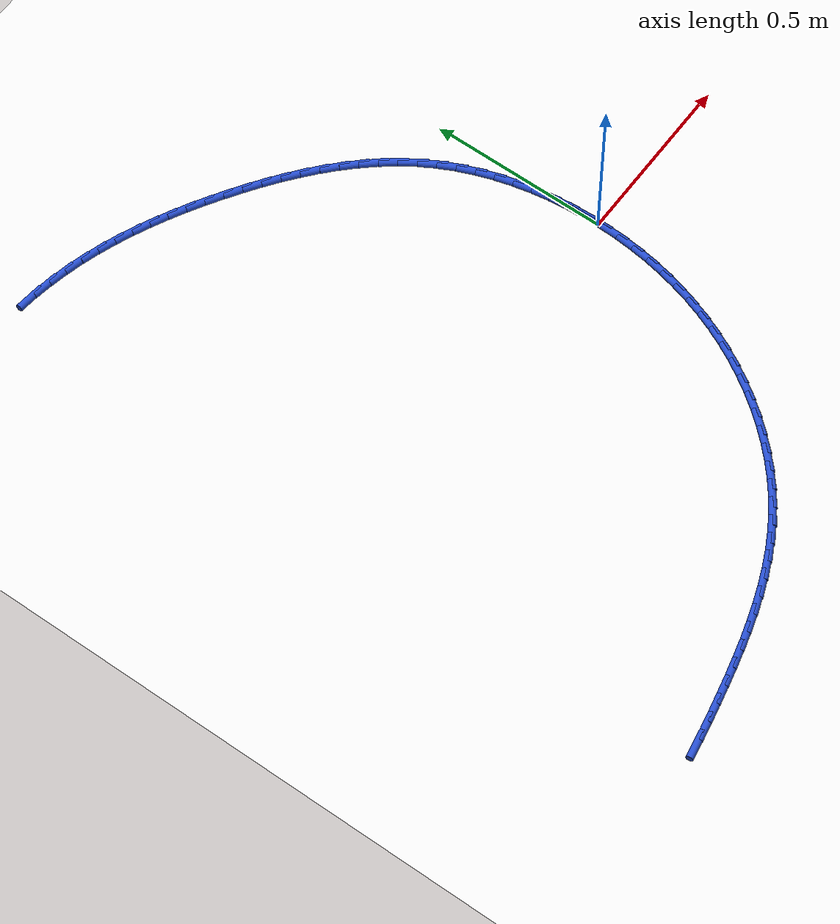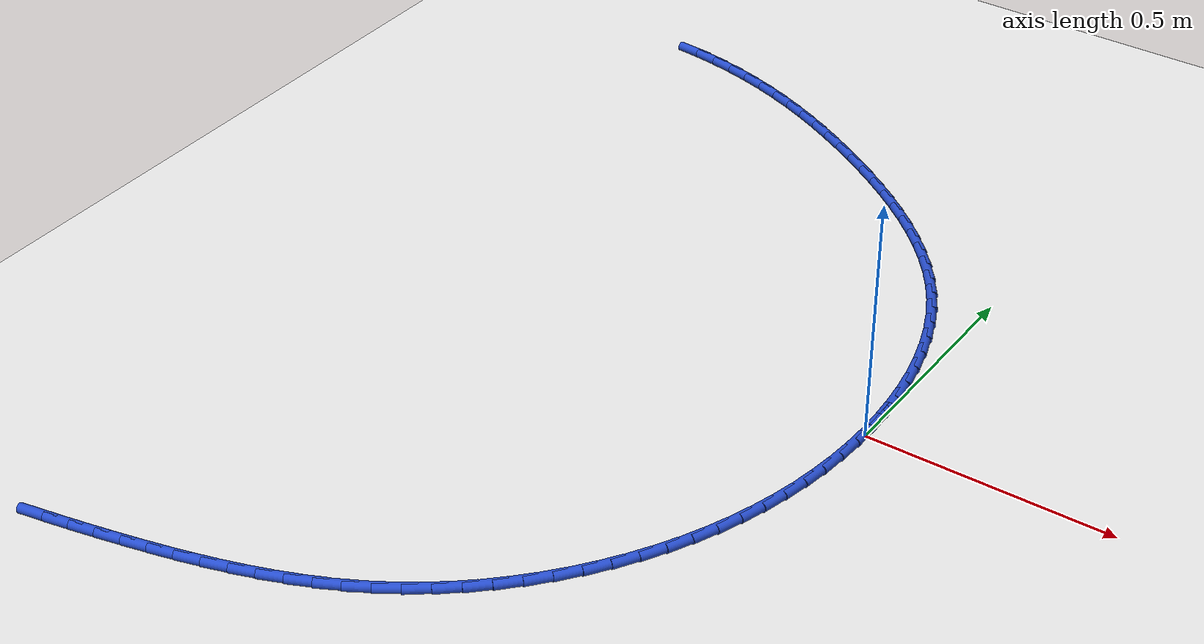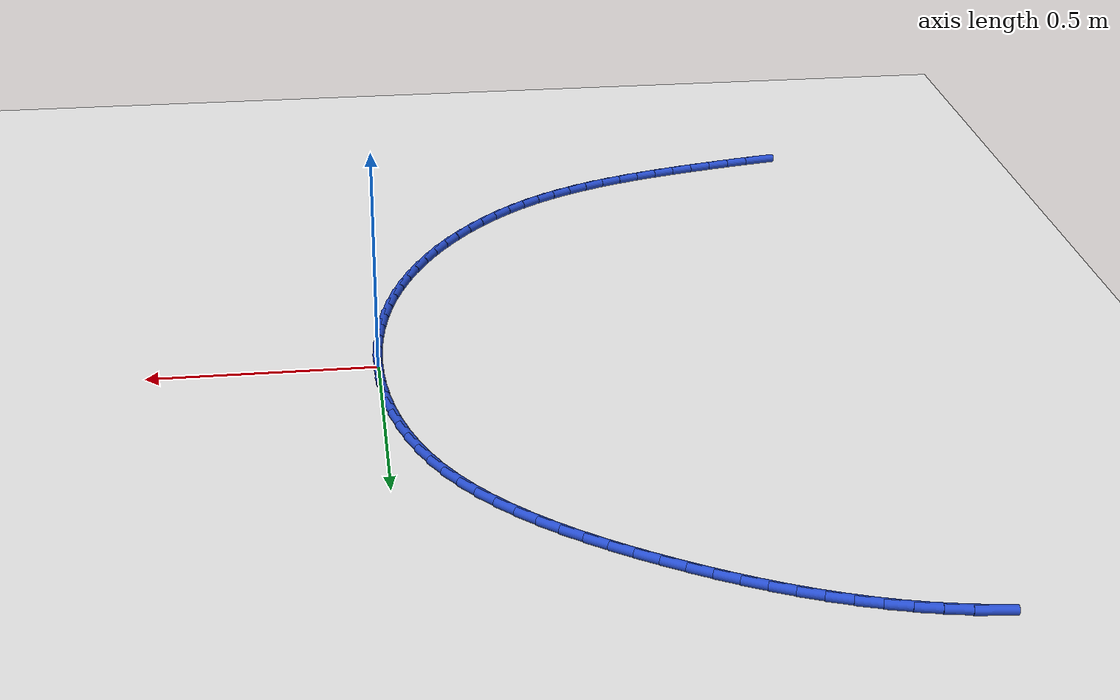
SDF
<sdf version="1.6">
 <world name="default">
  <model name="ground_plane">
   <static>1</static>
   <link name="link">
    <collision name="collision">
     <geometry><plane><normal>0 0 1</normal><size>100 100</size></plane></geometry>
     <surface><friction><ode><mu>100</mu><mu2>50</mu2></ode></friction></surface>
    </collision>
    <visual name="visual">
     <cast_shadows>0</cast_shadows>
     <geometry><plane><normal>0 0 1</normal><size>100 100</size></plane></geometry>
     <material>
      <script><uri>file://media/materials/scripts/gazebo.material</uri><name>Gazebo/WhiteGlow</name></script>
     </material>
    </visual>
   </link>
  </model>
  <model name="line">
   <link name="link_0">
    <pose>3.469446951953614e-18 9.71445146547012e-17 0.01 0 1.57 -1.5566317324128534</pose>
    <collision name="collision">
     <geometry><cylinder><radius>0.01</radius><length>0.08</length></cylinder></geometry>
    </collision>
    <visual name="visual">
     <material>
      <script><name>Gazebo/Blue</name><uri>file://media/materials/scripts/gazebo.material</uri></script>
     </material>
     <geometry><cylinder><radius>0.01</radius><length>0.08</length></cylinder></geometry>
    </visual>
   </link>
   <link name="link_1">
    <pose>-0.0007343135327152452 0.05183801261152439 0.01 0 1.57 -1.5074967584380725</pose>
    <collision name="collision">
     <geometry><cylinder><radius>0.01</radius><length>0.08</length></cylinder></geometry>
    </collision>
    <visual name="visual">
     <material>
      <script><name>Gazebo/Blue</name><uri>file://media/materials/scripts/gazebo.material</uri></script>
     </material>
     <geometry><cylinder><radius>0.01</radius><length>0.08</length></cylinder></geometry>
    </visual>
   </link>
   <link name="link_2">
    <pose>-0.004019828386317149 0.10367289227645665 0.01 0 1.57 -1.4568607281160295</pose>
    <collision name="collision">
     <geometry><cylinder><radius>0.01</radius><length>0.08</length></cylinder></geometry>
    </collision>
    <visual name="visual">
     <material>
      <script><name>Gazebo/Blue</name><uri>file://media/materials/scripts/gazebo.material</uri></script>
     </material>
     <geometry><cylinder><radius>0.01</radius><length>0.08</length></cylinder></geometry>
    </visual>
   </link>
   <link name="link_3">
    <pose>-0.009923932151636982 0.15526812685250835 0.01 0 1.57 -1.4043111510043598</pose>
    <collision name="collision">
     <geometry><cylinder><radius>0.01</radius><length>0.08</length></cylinder></geometry>
    </collision>
    <visual name="visual">
     <material>
      <script><name>Gazebo/Blue</name><uri>file://media/materials/scripts/gazebo.material</uri></script>
     </material>
     <geometry><cylinder><radius>0.01</radius><length>0.08</length></cylinder></geometry>
    </visual>
   </link>
   <link name="link_4">
    <pose>-0.018514012419506058 0.2063872041973911 0.01 0 1.57 -1.3494440706729272</pose>
    <collision name="collision">
     <geometry><cylinder><radius>0.01</radius><length>0.08</length></cylinder></geometry>
    </collision>
    <visual name="visual">
     <material>
      <script><name>Gazebo/Blue</name><uri>file://media/materials/scripts/gazebo.material</uri></script>
     </material>
     <geometry><cylinder><radius>0.01</radius><length>0.08</length></cylinder></geometry>
    </visual>
   </link>
   <link name="link_5">
    <pose>-0.029857456780755652 0.2567936121688164 0.01 0 1.57 -1.2918694282694452</pose>
    <collision name="collision">
     <geometry><cylinder><radius>0.01</radius><length>0.08</length></cylinder></geometry>
    </collision>
    <visual name="visual">
     <material>
      <script><name>Gazebo/Blue</name><uri>file://media/materials/scripts/gazebo.material</uri></script>
     </material>
     <geometry><cylinder><radius>0.01</radius><length>0.08</length></cylinder></geometry>
    </visual>
   </link>
   <link name="link_6">
    <pose>-0.04402165282621706 0.3062508386244958 0.01 0 1.57 -1.2312214551423895</pose>
    <collision name="collision">
     <geometry><cylinder><radius>0.01</radius><length>0.08</length></cylinder></geometry>
    </collision>
    <visual name="visual">
     <material>
      <script><name>Gazebo/Blue</name><uri>file://media/materials/scripts/gazebo.material</uri></script>
     </material>
     <geometry><cylinder><radius>0.01</radius><length>0.08</length></cylinder></geometry>
    </visual>
   </link>
   <link name="link_7">
    <pose>-0.061073988146721575 0.35452237142214077 0.01 0 1.57 -1.1671751203246548</pose>
    <collision name="collision">
     <geometry><cylinder><radius>0.01</radius><length>0.08</length></cylinder></geometry>
    </collision>
    <visual name="visual">
     <material>
      <script><name>Gazebo/Blue</name><uri>file://media/materials/scripts/gazebo.material</uri></script>
     </material>
     <geometry><cylinder><radius>0.01</radius><length>0.08</length></cylinder></geometry>
    </visual>
   </link>
   <link name="link_8">
    <pose>-0.08108185033310049 0.4013716984194631 0.01 0 1.57 -1.099469396811693</pose>
    <collision name="collision">
     <geometry><cylinder><radius>0.01</radius><length>0.08</length></cylinder></geometry>
    </collision>
    <visual name="visual">
     <material>
      <script><name>Gazebo/Blue</name><uri>file://media/materials/scripts/gazebo.material</uri></script>
     </material>
     <geometry><cylinder><radius>0.01</radius><length>0.08</length></cylinder></geometry>
    </visual>
   </link>
   <link name="link_9">
    <pose>-0.10411262697618506 0.44656230747417386 0.01 0 1.57 -1.0282347882272471</pose>
    <collision name="collision">
     <geometry><cylinder><radius>0.01</radius><length>0.08</length></cylinder></geometry>
    </collision>
    <visual name="visual">
     <material>
      <script><name>Gazebo/Blue</name><uri>file://media/materials/scripts/gazebo.material</uri></script>
     </material>
     <geometry><cylinder><radius>0.01</radius><length>0.08</length></cylinder></geometry>
    </visual>
   </link>
   <link name="link_10">
    <pose>-0.1302225553252489 0.489868320702775 0.01 0 1.57 -0.9582171007071562</pose>
    <collision name="collision">
     <geometry><cylinder><radius>0.01</radius><length>0.08</length></cylinder></geometry>
    </collision>
    <visual name="visual">
     <material>
      <script><name>Gazebo/Blue</name><uri>file://media/materials/scripts/gazebo.material</uri></script>
     </material>
     <geometry><cylinder><radius>0.01</radius><length>0.08</length></cylinder></geometry>
    </visual>
   </link>
   <link name="link_11">
    <pose>-0.15929152889532286 0.5312320420569326 0.01 0 1.57 -0.8934559367285768</pose>
    <collision name="collision">
     <geometry><cylinder><radius>0.01</radius><length>0.08</length></cylinder></geometry>
    </collision>
    <visual name="visual">
     <material>
      <script><name>Gazebo/Blue</name><uri>file://media/materials/scripts/gazebo.material</uri></script>
     </material>
     <geometry><cylinder><radius>0.01</radius><length>0.08</length></cylinder></geometry>
    </visual>
   </link>
   <link name="link_12">
    <pose>-0.1910586616061168 0.5707300392363086 0.01 0 1.57 -0.834197549050324</pose>
    <collision name="collision">
     <geometry><cylinder><radius>0.01</radius><length>0.08</length></cylinder></geometry>
    </collision>
    <visual name="visual">
     <material>
      <script><name>Gazebo/Blue</name><uri>file://media/materials/scripts/gazebo.material</uri></script>
     </material>
     <geometry><cylinder><radius>0.01</radius><length>0.08</length></cylinder></geometry>
    </visual>
   </link>
   <link name="link_13">
    <pose>-0.22525914317456938 0.608442622515409 0.01 0 1.57 -0.7804029303641173</pose>
    <collision name="collision">
     <geometry><cylinder><radius>0.01</radius><length>0.08</length></cylinder></geometry>
    </collision>
    <visual name="visual">
     <material>
      <script><name>Gazebo/Blue</name><uri>file://media/materials/scripts/gazebo.material</uri></script>
     </material>
     <geometry><cylinder><radius>0.01</radius><length>0.08</length></cylinder></geometry>
    </visual>
   </link>
   <link name="link_14">
    <pose>-0.2616281633176192 0.6444501021687388 0.01 0 1.57 -0.7319079962898171</pose>
    <collision name="collision">
     <geometry><cylinder><radius>0.01</radius><length>0.08</length></cylinder></geometry>
    </collision>
    <visual name="visual">
     <material>
      <script><name>Gazebo/Blue</name><uri>file://media/materials/scripts/gazebo.material</uri></script>
     </material>
     <geometry><cylinder><radius>0.01</radius><length>0.08</length></cylinder></geometry>
    </visual>
   </link>
   <link name="link_15">
    <pose>-0.2999009117522048 0.6788327884708041 0.01 0 1.57 -0.6884729206692392</pose>
    <collision name="collision">
     <geometry><cylinder><radius>0.01</radius><length>0.08</length></cylinder></geometry>
    </collision>
    <visual name="visual">
     <material>
      <script><name>Gazebo/Blue</name><uri>file://media/materials/scripts/gazebo.material</uri></script>
     </material>
     <geometry><cylinder><radius>0.01</radius><length>0.08</length></cylinder></geometry>
    </visual>
   </link>
   <link name="link_16">
    <pose>-0.3398125781952649 0.7116709916961104 0.01 0 1.57 -0.6498219626443095</pose>
    <collision name="collision">
     <geometry><cylinder><radius>0.01</radius><length>0.08</length></cylinder></geometry>
    </collision>
    <visual name="visual">
     <material>
      <script><name>Gazebo/Blue</name><uri>file://media/materials/scripts/gazebo.material</uri></script>
     </material>
     <geometry><cylinder><radius>0.01</radius><length>0.08</length></cylinder></geometry>
    </visual>
   </link>
   <link name="link_17">
    <pose>-0.381098352363738 0.7430450221191631 0.01 0 1.57 -0.6156734981974631</pose>
    <collision name="collision">
     <geometry><cylinder><radius>0.01</radius><length>0.08</length></cylinder></geometry>
    </collision>
    <visual name="visual">
     <material>
      <script><name>Gazebo/Blue</name><uri>file://media/materials/scripts/gazebo.material</uri></script>
     </material>
     <geometry><cylinder><radius>0.01</radius><length>0.08</length></cylinder></geometry>
    </visual>
   </link>
   <link name="link_18">
    <pose>-0.4234934239745627 0.773035190014468 0.01 0 1.57 -0.5857616198643526</pose>
    <collision name="collision">
     <geometry><cylinder><radius>0.01</radius><length>0.08</length></cylinder></geometry>
    </collision>
    <visual name="visual">
     <material>
      <script><name>Gazebo/Blue</name><uri>file://media/materials/scripts/gazebo.material</uri></script>
     </material>
     <geometry><cylinder><radius>0.01</radius><length>0.08</length></cylinder></geometry>
    </visual>
   </link>
   <link name="link_19">
    <pose>-0.4667329827446777 0.801721805656531 0.01 0 1.57 -0.5598445708718316</pose>
    <collision name="collision">
     <geometry><cylinder><radius>0.01</radius><length>0.08</length></cylinder></geometry>
    </collision>
    <visual name="visual">
     <material>
      <script><name>Gazebo/Blue</name><uri>file://media/materials/scripts/gazebo.material</uri></script>
     </material>
     <geometry><cylinder><radius>0.01</radius><length>0.08</length></cylinder></geometry>
    </visual>
   </link>
   <link name="link_20">
    <pose>-0.5105525554035906 0.829184979340738 0.01 0 1.57 -0.535884732671854</pose>
    <collision name="collision">
     <geometry><cylinder><radius>0.01</radius><length>0.08</length></cylinder></geometry>
    </collision>
    <visual name="visual">
     <material>
      <script><name>Gazebo/Blue</name><uri>file://media/materials/scripts/gazebo.material</uri></script>
     </material>
     <geometry><cylinder><radius>0.01</radius><length>0.08</length></cylinder></geometry>
    </visual>
   </link>
   <link name="link_21">
    <pose>-0.5547805154188681 0.8554497272485135 0.01 0 1.57 -0.509443847522416</pose>
    <collision name="collision">
     <geometry><cylinder><radius>0.01</radius><length>0.08</length></cylinder></geometry>
    </collision>
    <visual name="visual">
     <material>
      <script><name>Gazebo/Blue</name><uri>file://media/materials/scripts/gazebo.material</uri></script>
     </material>
     <geometry><cylinder><radius>0.01</radius><length>0.08</length></cylinder></geometry>
    </visual>
   </link>
   <link name="link_22">
    <pose>-0.5994640400331763 0.8804112300886218 0.01 0 1.57 -0.47989364191115375</pose>
    <collision name="collision">
     <geometry><cylinder><radius>0.01</radius><length>0.08</length></cylinder></geometry>
    </collision>
    <visual name="visual">
     <material>
      <script><name>Gazebo/Blue</name><uri>file://media/materials/scripts/gazebo.material</uri></script>
     </material>
     <geometry><cylinder><radius>0.01</radius><length>0.08</length></cylinder></geometry>
    </visual>
   </link>
   <link name="link_23">
    <pose>-0.6446818061505752 0.9039459770576551 0.01 0 1.57 -0.44726727101711633</pose>
    <collision name="collision">
     <geometry><cylinder><radius>0.01</radius><length>0.08</length></cylinder></geometry>
    </collision>
    <visual name="visual">
     <material>
      <script><name>Gazebo/Blue</name><uri>file://media/materials/scripts/gazebo.material</uri></script>
     </material>
     <geometry><cylinder><radius>0.01</radius><length>0.08</length></cylinder></geometry>
    </visual>
   </link>
   <link name="link_24">
    <pose>-0.6905124906751254 0.9259304573522051 0.01 0 1.57 -0.4116380903305394</pose>
    <collision name="collision">
     <geometry><cylinder><radius>0.01</radius><length>0.08</length></cylinder></geometry>
    </collision>
    <visual name="visual">
     <material>
      <script><name>Gazebo/Blue</name><uri>file://media/materials/scripts/gazebo.material</uri></script>
     </material>
     <geometry><cylinder><radius>0.01</radius><length>0.08</length></cylinder></geometry>
    </visual>
   </link>
   <link name="link_25">
    <pose>-0.7370347705108873 0.946241160168864 0.01 0 1.57 -0.37312768746584163</pose>
    <collision name="collision">
     <geometry><cylinder><radius>0.01</radius><length>0.08</length></cylinder></geometry>
    </collision>
    <visual name="visual">
     <material>
      <script><name>Gazebo/Blue</name><uri>file://media/materials/scripts/gazebo.material</uri></script>
     </material>
     <geometry><cylinder><radius>0.01</radius><length>0.08</length></cylinder></geometry>
    </visual>
   </link>
   <link name="link_26">
    <pose>-0.7843273225619207 0.964754574704223 0.01 0 1.57 -0.33191275865840947</pose>
    <collision name="collision">
     <geometry><cylinder><radius>0.01</radius><length>0.08</length></cylinder></geometry>
    </collision>
    <visual name="visual">
     <material>
      <script><name>Gazebo/Blue</name><uri>file://media/materials/scripts/gazebo.material</uri></script>
     </material>
     <geometry><cylinder><radius>0.01</radius><length>0.08</length></cylinder></geometry>
    </visual>
   </link>
   <link name="link_27">
    <pose>-0.8324688237322865 0.9813471901548748 0.01 0 1.57 -0.2882297624948947</pose>
    <collision name="collision">
     <geometry><cylinder><radius>0.01</radius><length>0.08</length></cylinder></geometry>
    </collision>
    <visual name="visual">
     <material>
      <script><name>Gazebo/Blue</name><uri>file://media/materials/scripts/gazebo.material</uri></script>
     </material>
     <geometry><cylinder><radius>0.01</radius><length>0.08</length></cylinder></geometry>
    </visual>
   </link>
   <link name="link_28">
    <pose>-0.8815379509260444 0.9958954957174107 0.01 0 1.57 -0.24243421922884695</pose>
    <collision name="collision">
     <geometry><cylinder><radius>0.01</radius><length>0.08</length></cylinder></geometry>
    </collision>
    <visual name="visual">
     <material>
      <script><name>Gazebo/Blue</name><uri>file://media/materials/scripts/gazebo.material</uri></script>
     </material>
     <geometry><cylinder><radius>0.01</radius><length>0.08</length></cylinder></geometry>
    </visual>
   </link>
   <link name="link_29">
    <pose>-0.9316029777800573 1.0082764888013473 0.01 0 1.57 -0.195605358477503</pose>
    <collision name="collision">
     <geometry><cylinder><radius>0.01</radius><length>0.08</length></cylinder></geometry>
    </collision>
    <visual name="visual">
     <material>
      <script><name>Gazebo/Blue</name><uri>file://media/materials/scripts/gazebo.material</uri></script>
     </material>
     <geometry><cylinder><radius>0.01</radius><length>0.08</length></cylinder></geometry>
    </visual>
   </link>
   <link name="link_30">
    <pose>-0.98257021535936 1.0183750788952444 0.01 0 1.57 -0.14813587304020526</pose>
    <collision name="collision">
     <geometry><cylinder><radius>0.01</radius><length>0.08</length></cylinder></geometry>
    </collision>
    <visual name="visual">
     <material>
      <script><name>Gazebo/Blue</name><uri>file://media/materials/scripts/gazebo.material</uri></script>
     </material>
     <geometry><cylinder><radius>0.01</radius><length>0.08</length></cylinder></geometry>
    </visual>
   </link>
   <link name="link_31">
    <pose>-1.034217993445446 1.0260824275372538 0.01 0 1.57 -0.0996139849645053</pose>
    <collision name="collision">
     <geometry><cylinder><radius>0.01</radius><length>0.08</length></cylinder></geometry>
    </collision>
    <visual name="visual">
     <material>
      <script><name>Gazebo/Blue</name><uri>file://media/materials/scripts/gazebo.material</uri></script>
     </material>
     <geometry><cylinder><radius>0.01</radius><length>0.08</length></cylinder></geometry>
    </visual>
   </link>
   <link name="link_98">
    <pose>-1.0721927922545622 -1.0332676632430768 0.01 0 1.57 0.18064238397949786</pose>
    <collision name="collision">
     <geometry><cylinder><radius>0.01</radius><length>0.08</length></cylinder></geometry>
    </collision>
    <visual name="visual">
     <material>
      <script><name>Gazebo/Blue</name><uri>file://media/materials/scripts/gazebo.material</uri></script>
     </material>
     <geometry><cylinder><radius>0.01</radius><length>0.08</length></cylinder></geometry>
    </visual>
   </link>
   <link name="link_99">
    <pose>-1.0199571216843824 -1.0237276923393024 0.01 0 1.57 0.1972246457839845</pose>
    <collision name="collision">
     <geometry><cylinder><radius>0.01</radius><length>0.08</length></cylinder></geometry>
    </collision>
    <visual name="visual">
     <material>
      <script><name>Gazebo/Blue</name><uri>file://media/materials/scripts/gazebo.material</uri></script>
     </material>
     <geometry><cylinder><radius>0.01</radius><length>0.08</length></cylinder></geometry>
    </visual>
   </link>
   <link name="link_100">
    <pose>-0.9679130536308634 -1.0133281292782867 0.01 0 1.57 0.2089383171219716</pose>
    <collision name="collision">
     <geometry><cylinder><radius>0.01</radius><length>0.08</length></cylinder></geometry>
    </collision>
    <visual name="visual">
     <material>
      <script><name>Gazebo/Blue</name><uri>file://media/materials/scripts/gazebo.material</uri></script>
     </material>
     <geometry><cylinder><radius>0.01</radius><length>0.08</length></cylinder></geometry>
    </visual>
   </link>
   <link name="link_101">
    <pose>-0.9161949893773788 -1.0023622043251157 0.01 0 1.57 0.22067676966898908</pose>
    <collision name="collision">
     <geometry><cylinder><radius>0.01</radius><length>0.08</length></cylinder></geometry>
    </collision>
    <visual name="visual">
     <material>
      <script><name>Gazebo/Blue</name><uri>file://media/materials/scripts/gazebo.material</uri></script>
     </material>
     <geometry><cylinder><radius>0.01</radius><length>0.08</length></cylinder></geometry>
    </visual>
   </link>
   <link name="link_102">
    <pose>-0.8649176954105361 -0.990859161731234 0.01 0 1.57 0.23687174572220757</pose>
    <collision name="collision">
     <geometry><cylinder><radius>0.01</radius><length>0.08</length></cylinder></geometry>
    </collision>
    <visual name="visual">
     <material>
      <script><name>Gazebo/Blue</name><uri>file://media/materials/scripts/gazebo.material</uri></script>
     </material>
     <geometry><cylinder><radius>0.01</radius><length>0.08</length></cylinder></geometry>
    </visual>
   </link>
   <link name="link_103">
    <pose>-0.81417825333847 -0.9786104760056118 0.01 0 1.57 0.2578049921795611</pose>
    <collision name="collision">
     <geometry><cylinder><radius>0.01</radius><length>0.08</length></cylinder></geometry>
    </collision>
    <visual name="visual">
     <material>
      <script><name>Gazebo/Blue</name><uri>file://media/materials/scripts/gazebo.material</uri></script>
     </material>
     <geometry><cylinder><radius>0.01</radius><length>0.08</length></cylinder></geometry>
    </visual>
   </link>
   <link name="link_104">
    <pose>-0.7640731128035008 -0.9653991250001115 0.01 0 1.57 0.2836107079993085</pose>
    <collision name="collision">
     <geometry><cylinder><radius>0.01</radius><length>0.08</length></cylinder></geometry>
    </collision>
    <visual name="visual">
     <material>
      <script><name>Gazebo/Blue</name><uri>file://media/materials/scripts/gazebo.material</uri></script>
     </material>
     <geometry><cylinder><radius>0.01</radius><length>0.08</length></cylinder></geometry>
    </visual>
   </link>
   <link name="link_105">
    <pose>-0.7146987234479495 -0.9510080865665939 0.01 0 1.57 0.314416550112985</pose>
    <collision name="collision">
     <geometry><cylinder><radius>0.01</radius><length>0.08</length></cylinder></geometry>
    </collision>
    <visual name="visual">
     <material>
      <script><name>Gazebo/Blue</name><uri>file://media/materials/scripts/gazebo.material</uri></script>
     </material>
     <geometry><cylinder><radius>0.01</radius><length>0.08</length></cylinder></geometry>
    </visual>
   </link>
   <link name="link_106">
    <pose>-0.6661515349141368 -0.9352203385569207 0.01 0 1.57 0.3503248008671696</pose>
    <collision name="collision">
     <geometry><cylinder><radius>0.01</radius><length>0.08</length></cylinder></geometry>
    </collision>
    <visual name="visual">
     <material>
      <script><name>Gazebo/Blue</name><uri>file://media/materials/scripts/gazebo.material</uri></script>
     </material>
     <geometry><cylinder><radius>0.01</radius><length>0.08</length></cylinder></geometry>
    </visual>
   </link>
   <link name="link_107">
    <pose>-0.6185279968443832 -0.9178188588229533 0.01 0 1.57 0.39138805335480753</pose>
    <collision name="collision">
     <geometry><cylinder><radius>0.01</radius><length>0.08</length></cylinder></geometry>
    </collision>
    <visual name="visual">
     <material>
      <script><name>Gazebo/Blue</name><uri>file://media/materials/scripts/gazebo.material</uri></script>
     </material>
     <geometry><cylinder><radius>0.01</radius><length>0.08</length></cylinder></geometry>
    </visual>
   </link>
   <link name="link_108">
    <pose>-0.571924558881011 -0.8985866252165539 0.01 0 1.57 0.43757983819589513</pose>
    <collision name="collision">
     <geometry><cylinder><radius>0.01</radius><length>0.08</length></cylinder></geometry>
    </collision>
    <visual name="visual">
     <material>
      <script><name>Gazebo/Blue</name><uri>file://media/materials/scripts/gazebo.material</uri></script>
     </material>
     <geometry><cylinder><radius>0.01</radius><length>0.08</length></cylinder></geometry>
    </visual>
   </link>
   <link name="link_109">
    <pose>-0.5264376706663404 -0.8773066155895837 0.01 0 1.57 0.488761979789829</pose>
    <collision name="collision">
     <geometry><cylinder><radius>0.01</radius><length>0.08</length></cylinder></geometry>
    </collision>
    <visual name="visual">
     <material>
      <script><name>Gazebo/Blue</name><uri>file://media/materials/scripts/gazebo.material</uri></script>
     </material>
     <geometry><cylinder><radius>0.01</radius><length>0.08</length></cylinder></geometry>
    </visual>
   </link>
   <link name="link_110">
    <pose>-0.4821637818426919 -0.8537618077939039 0.01 0 1.57 0.5446523612086802</pose>
    <collision name="collision">
     <geometry><cylinder><radius>0.01</radius><length>0.08</length></cylinder></geometry>
    </collision>
    <visual name="visual">
     <material>
      <script><name>Gazebo/Blue</name><uri>file://media/materials/scripts/gazebo.material</uri></script>
     </material>
     <geometry><cylinder><radius>0.01</radius><length>0.08</length></cylinder></geometry>
    </visual>
   </link>
   <link name="link_111">
    <pose>-0.4391993420523877 -0.827735179681377 0.01 0 1.57 0.604204843178153</pose>
    <collision name="collision">
     <geometry><cylinder><radius>0.01</radius><length>0.08</length></cylinder></geometry>
    </collision>
    <visual name="visual">
     <material>
      <script><name>Gazebo/Blue</name><uri>file://media/materials/scripts/gazebo.material</uri></script>
     </material>
     <geometry><cylinder><radius>0.01</radius><length>0.08</length></cylinder></geometry>
    </visual>
   </link>
   <link name="link_112">
    <pose>-0.3976420693725945 -0.7990470496569273 0.01 0 1.57 0.6630850581475252</pose>
    <collision name="collision">
     <geometry><cylinder><radius>0.01</radius><length>0.08</length></cylinder></geometry>
    </collision>
    <visual name="visual">
     <material>
      <script><name>Gazebo/Blue</name><uri>file://media/materials/scripts/gazebo.material</uri></script>
     </material>
     <geometry><cylinder><radius>0.01</radius><length>0.08</length></cylinder></geometry>
    </visual>
   </link>
   <link name="link_113">
    <pose>-0.35759826581183624 -0.767770432387519 0.01 0 1.57 0.719852465769127</pose>
    <collision name="collision">
     <geometry><cylinder><radius>0.01</radius><length>0.08</length></cylinder></geometry>
    </collision>
    <visual name="visual">
     <material>
      <script><name>Gazebo/Blue</name><uri>file://media/materials/scripts/gazebo.material</uri></script>
     </material>
     <geometry><cylinder><radius>0.01</radius><length>0.08</length></cylinder></geometry>
    </visual>
   </link>
   <link name="link_114">
    <pose>-0.3191777917631203 -0.73408309529506 0.01 0 1.57 0.7748304605712163</pose>
    <collision name="collision">
     <geometry><cylinder><radius>0.01</radius><length>0.08</length></cylinder></geometry>
    </collision>
    <visual name="visual">
     <material>
      <script><name>Gazebo/Blue</name><uri>file://media/materials/scripts/gazebo.material</uri></script>
     </material>
     <geometry><cylinder><radius>0.01</radius><length>0.08</length></cylinder></geometry>
    </visual>
   </link>
   <link name="link_115">
    <pose>-0.2824905190650606 -0.6981631427405552 0.01 0 1.57 0.8283588278181194</pose>
    <collision name="collision">
     <geometry><cylinder><radius>0.01</radius><length>0.08</length></cylinder></geometry>
    </collision>
    <visual name="visual">
     <material>
      <script><name>Gazebo/Blue</name><uri>file://media/materials/scripts/gazebo.material</uri></script>
     </material>
     <geometry><cylinder><radius>0.01</radius><length>0.08</length></cylinder></geometry>
    </visual>
   </link>
   <link name="link_116">
    <pose>-0.24764631955627245 -0.660188679085011 0.01 0 1.57 0.8807830080756377</pose>
    <collision name="collision">
     <geometry><cylinder><radius>0.01</radius><length>0.08</length></cylinder></geometry>
    </collision>
    <visual name="visual">
     <material>
      <script><name>Gazebo/Blue</name><uri>file://media/materials/scripts/gazebo.material</uri></script>
     </material>
     <geometry><cylinder><radius>0.01</radius><length>0.08</length></cylinder></geometry>
    </visual>
   </link>
   <link name="link_117">
    <pose>-0.2147550650753696 -0.6203378086894317 0.01 0 1.57 0.9324511856642539</pose>
    <collision name="collision">
     <geometry><cylinder><radius>0.01</radius><length>0.08</length></cylinder></geometry>
    </collision>
    <visual name="visual">
     <material>
      <script><name>Gazebo/Blue</name><uri>file://media/materials/scripts/gazebo.material</uri></script>
     </material>
     <geometry><cylinder><radius>0.01</radius><length>0.08</length></cylinder></geometry>
    </visual>
   </link>
   <link name="link_118">
    <pose>-0.18392662746096589 -0.578788635914822 0.01 0 1.57 0.9837131697810836</pose>
    <collision name="collision">
     <geometry><cylinder><radius>0.01</radius><length>0.08</length></cylinder></geometry>
    </collision>
    <visual name="visual">
     <material>
      <script><name>Gazebo/Blue</name><uri>file://media/materials/scripts/gazebo.material</uri></script>
     </material>
     <geometry><cylinder><radius>0.01</radius><length>0.08</length></cylinder></geometry>
    </visual>
   </link>
   <link name="link_119">
    <pose>-0.15527087855167657 -0.5357192651221887 0.01 0 1.57 1.0349204756605086</pose>
    <collision name="collision">
     <geometry><cylinder><radius>0.01</radius><length>0.08</length></cylinder></geometry>
    </collision>
    <visual name="visual">
     <material>
      <script><name>Gazebo/Blue</name><uri>file://media/materials/scripts/gazebo.material</uri></script>
     </material>
     <geometry><cylinder><radius>0.01</radius><length>0.08</length></cylinder></geometry>
    </visual>
   </link>
   <link name="link_120">
    <pose>-0.12889769018611555 -0.4913078006725363 0.01 0 1.57 1.0864150074427845</pose>
    <collision name="collision">
     <geometry><cylinder><radius>0.01</radius><length>0.08</length></cylinder></geometry>
    </collision>
    <visual name="visual">
     <material>
      <script><name>Gazebo/Blue</name><uri>file://media/materials/scripts/gazebo.material</uri></script>
     </material>
     <geometry><cylinder><radius>0.01</radius><length>0.08</length></cylinder></geometry>
    </visual>
   </link>
   <link name="link_121">
    <pose>-0.10491567015812205 -0.445731279770602 0.01 0 1.57 1.138059653960992</pose>
    <collision name="collision">
     <geometry><cylinder><radius>0.01</radius><length>0.08</length></cylinder></geometry>
    </collision>
    <visual name="visual">
     <material>
      <script><name>Gazebo/Blue</name><uri>file://media/materials/scripts/gazebo.material</uri></script>
     </material>
     <geometry><cylinder><radius>0.01</radius><length>0.08</length></cylinder></geometry>
    </visual>
   </link>
   <link name="link_122">
    <pose>-0.08338807903503705 -0.3991284557106579 0.01 0 1.57 1.189358690603426</pose>
    <collision name="collision">
     <geometry><cylinder><radius>0.01</radius><length>0.08</length></cylinder></geometry>
    </collision>
    <visual name="visual">
     <material>
      <script><name>Gazebo/Blue</name><uri>file://media/materials/scripts/gazebo.material</uri></script>
     </material>
     <geometry><cylinder><radius>0.01</radius><length>0.08</length></cylinder></geometry>
    </visual>
   </link>
   <link name="link_123">
    <pose>-0.06432137441328757 -0.351590126486937 0.01 0 1.57 1.2402503895216048</pose>
    <collision name="collision">
     <geometry><cylinder><radius>0.01</radius><length>0.08</length></cylinder></geometry>
    </collision>
    <visual name="visual">
     <material>
      <script><name>Gazebo/Blue</name><uri>file://media/materials/scripts/gazebo.material</uri></script>
     </material>
     <geometry><cylinder><radius>0.01</radius><length>0.08</length></cylinder></geometry>
    </visual>
   </link>
   <link name="link_124">
    <pose>-0.04771842219646408 -0.30320405784545057 0.01 0 1.57 1.290717830853545</pose>
    <collision name="collision">
     <geometry><cylinder><radius>0.01</radius><length>0.08</length></cylinder></geometry>
    </collision>
    <visual name="visual">
     <material>
      <script><name>Gazebo/Blue</name><uri>file://media/materials/scripts/gazebo.material</uri></script>
     </material>
     <geometry><cylinder><radius>0.01</radius><length>0.08</length></cylinder></geometry>
    </visual>
   </link>
   <link name="link_125">
    <pose>-0.033582088288156245 -0.25405801553220797 0.01 0 1.57 1.3407537562860588</pose>
    <collision name="collision">
     <geometry><cylinder><radius>0.01</radius><length>0.08</length></cylinder></geometry>
    </collision>
    <visual name="visual">
     <material>
      <script><name>Gazebo/Blue</name><uri>file://media/materials/scripts/gazebo.material</uri></script>
     </material>
     <geometry><cylinder><radius>0.01</radius><length>0.08</length></cylinder></geometry>
    </visual>
   </link>
   <link name="link_126">
    <pose>-0.021915238591953847 -0.2042397652932184 0.01 0 1.57 1.3903595524700672</pose>
    <collision name="collision">
     <geometry><cylinder><radius>0.01</radius><length>0.08</length></cylinder></geometry>
    </collision>
    <visual name="visual">
     <material>
      <script><name>Gazebo/Blue</name><uri>file://media/materials/scripts/gazebo.material</uri></script>
     </material>
     <geometry><cylinder><radius>0.01</radius><length>0.08</length></cylinder></geometry>
    </visual>
   </link>
   <link name="link_127">
    <pose>-0.012720739011447203 -0.15383707287449325 0.01 0 1.57 1.4395441199046428</pose>
    <collision name="collision">
     <geometry><cylinder><radius>0.01</radius><length>0.08</length></cylinder></geometry>
    </collision>
    <visual name="visual">
     <material>
      <script><name>Gazebo/Blue</name><uri>file://media/materials/scripts/gazebo.material</uri></script>
     </material>
     <geometry><cylinder><radius>0.01</radius><length>0.08</length></cylinder></geometry>
    </visual>
   </link>
   <link name="link_128">
    <pose>-0.006001455450226045 -0.10293770402204183 0.01 0 1.57 1.4883226747485108</pose>
    <collision name="collision">
     <geometry><cylinder><radius>0.01</radius><length>0.08</length></cylinder></geometry>
    </collision>
    <visual name="visual">
     <material>
      <script><name>Gazebo/Blue</name><uri>file://media/materials/scripts/gazebo.material</uri></script>
     </material>
     <geometry><cylinder><radius>0.01</radius><length>0.08</length></cylinder></geometry>
    </visual>
   </link>
   <link name="link_129">
    <pose>-0.0017602538118803319 -0.05162942448187409 0.01 0 1.57 1.5367155237548953</pose>
    <collision name="collision">
     <geometry><cylinder><radius>0.01</radius><length>0.08</length></cylinder></geometry>
    </collision>
    <visual name="visual">
     <material>
      <script><name>Gazebo/Blue</name><uri>file://media/materials/scripts/gazebo.material</uri></script>
     </material>
     <geometry><cylinder><radius>0.01</radius><length>0.08</length></cylinder></geometry>
    </visual>
   </link>
   <link name="link_130">
    <pose>-1.0408340855860843e-17 2.7755575615628914e-17 0.01 0 1.57 -1.5568458087501142</pose>
    <collision name="collision">
     <geometry><cylinder><radius>0.01</radius><length>0.08</length></cylinder></geometry>
    </collision>
    <visual name="visual">
     <material>
      <script><name>Gazebo/Blue</name><uri>file://media/materials/scripts/gazebo.material</uri></script>
     </material>
     <geometry><cylinder><radius>0.01</radius><length>0.08</length></cylinder></geometry>
    </visual>
   </link>
   <link name="link_131">
    <pose>-0.0007235599181750242 0.05186280367757057 0.01 0 1.57 -1.5568458087501138</pose>
    <collision name="collision">
     <geometry><cylinder><radius>0.01</radius><length>0.08</length></cylinder></geometry>
    </collision>
    <visual name="visual">
     <material>
      <script><name>Gazebo/Blue</name><uri>file://media/materials/scripts/gazebo.material</uri></script>
     </material>
     <geometry><cylinder><radius>0.01</radius><length>0.08</length></cylinder></geometry>
    </visual>
   </link>
  </model>
 </world>
</sdf>
